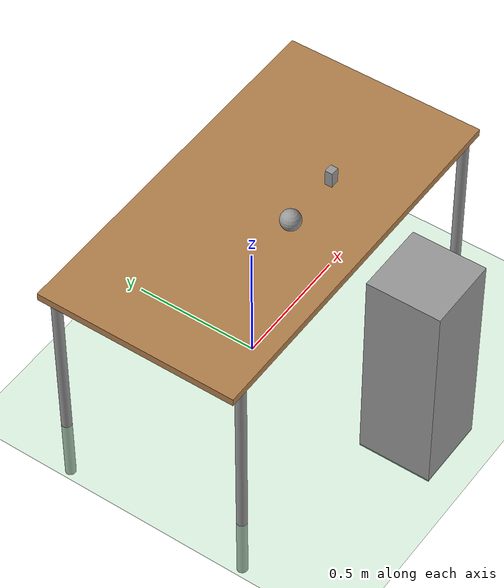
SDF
<sdf version="1.7">
 <world name="default">
  <light name="sun" type="directional">
   <pose>0 0 10 0 -0 0</pose>
   <diffuse>0.8 0.8 0.8 1</diffuse>
   <specular>0.2 0.2 0.2 1</specular>
   <attenuation>
    <range>1000</range>
    <constant>0.9</constant>
    <linear>0.01</linear>
    <quadratic>0.001</quadratic>
   </attenuation>
   <direction>-0.5 0.1 -0.9</direction>
   <spot><inner_angle>0</inner_angle><outer_angle>0</outer_angle><falloff>0</falloff></spot>
  </light>
  <gravity>0 0 -9.8</gravity>
  <magnetic_field>6e-06 2.3e-05 -4.2e-05</magnetic_field>
  <atmosphere type="adiabatic"/>
  <physics type="ode">
   <max_step_size>0.001</max_step_size>
   <real_time_factor>1</real_time_factor>
   <real_time_update_rate>1000</real_time_update_rate>
  </physics>
  <scene><ambient>0.4 0.4 0.4 1</ambient><background>0.7 0.7 0.7 1</background><shadows>1</shadows></scene>
  <spherical_coordinates>
   <surface_model>EARTH_WGS84</surface_model>
   <latitude_deg>0</latitude_deg>
   <longitude_deg>0</longitude_deg>
   <elevation>0</elevation>
   <heading_deg>0</heading_deg>
  </spherical_coordinates>
  <model name="green_ground">
   <static>1</static>
   <link name="link">
    <collision name="collision">
     <geometry><plane><normal>0 0 1</normal><size>100 100</size></plane></geometry>
     <surface><friction><ode><mu>100</mu><mu2>50</mu2></ode></friction></surface>
    </collision>
    <visual name="visual">
     <geometry><plane><normal>0 0 1</normal><size>100 100</size></plane></geometry>
     <material><ambient>0.56 0.86 0.63 1</ambient><diffuse>0.56 0.86 0.63 1</diffuse></material>
    </visual>
   </link>
   <pose>0.338841 -0.356185 0 0 -0 0</pose>
  </model>
  <model name="table">
   <static>1</static>
   <link name="link">
    <collision name="surface">
     <pose>0 0 1 0 -0 0</pose>
     <geometry><box><size>1.5 0.8 0.03</size></box></geometry>
     <surface><friction><ode><mu>0.6</mu><mu2>0.6</mu2></ode></friction></surface>
    </collision>
    <visual name="visual1">
     <pose>0 0 1 0 -0 0</pose>
     <geometry><box><size>1.5 0.8 0.03</size></box></geometry>
     <material>
      <script><uri>file://media/materials/scripts/gazebo.material</uri><name>Gazebo/Wood</name></script>
     </material>
    </visual>
    <collision name="front_left_leg">
     <pose>0.68 0.38 0.5 0 -0 0</pose>
     <geometry><cylinder><radius>0.02</radius><length>1</length></cylinder></geometry>
    </collision>
    <visual name="front_left_leg">
     <pose>0.68 0.38 0.5 0 -0 0</pose>
     <geometry><cylinder><radius>0.02</radius><length>1</length></cylinder></geometry>
     <material>
      <script><uri>file://media/materials/scripts/gazebo.material</uri><name>Gazebo/Grey</name></script>
     </material>
    </visual>
    <collision name="front_right_leg">
     <pose>0.68 -0.38 0.5 0 -0 0</pose>
     <geometry><cylinder><radius>0.02</radius><length>1</length></cylinder></geometry>
    </collision>
    <visual name="front_right_leg">
     <pose>0.68 -0.38 0.5 0 -0 0</pose>
     <geometry><cylinder><radius>0.02</radius><length>1</length></cylinder></geometry>
     <material>
      <script><uri>file://media/materials/scripts/gazebo.material</uri><name>Gazebo/Grey</name></script>
     </material>
    </visual>
    <collision name="back_right_leg">
     <pose>-0.68 -0.38 0.5 0 -0 0</pose>
     <geometry><cylinder><radius>0.02</radius><length>1</length></cylinder></geometry>
    </collision>
    <visual name="back_right_leg">
     <pose>-0.68 -0.38 0.5 0 -0 0</pose>
     <geometry><cylinder><radius>0.02</radius><length>1</length></cylinder></geometry>
     <material>
      <script><uri>file://media/materials/scripts/gazebo.material</uri><name>Gazebo/Grey</name></script>
     </material>
    </visual>
    <collision name="back_left_leg">
     <pose>-0.68 0.38 0.5 0 -0 0</pose>
     <geometry><cylinder><radius>0.02</radius><length>1</length></cylinder></geometry>
    </collision>
    <visual name="back_left_leg">
     <pose>-0.68 0.38 0.5 0 -0 0</pose>
     <geometry><cylinder><radius>0.02</radius><length>1</length></cylinder></geometry>
     <material>
      <script><uri>file://media/materials/scripts/gazebo.material</uri><name>Gazebo/Grey</name></script>
     </material>
    </visual>
   </link>
   <pose>0.020823 -0.037922 -0.27474 0 -0 0</pose>
  </model>
  <model name="unit_sphere">
   <link name="link">
    <inertial>
     <mass>0.05</mass>
     <inertia>
      <ixx>3.101e-05</ixx>
      <ixy>0</ixy>
      <ixz>0</ixz>
      <iyy>3.101e-05</iyy>
      <iyz>0</iyz>
      <izz>3.101e-05</izz>
     </inertia>
    </inertial>
    <visual name="visual">
     <geometry><sphere><radius>0.0393774</radius></sphere></geometry>
     <material>
      <script><name>Gazebo/Grey</name><uri>file://media/materials/scripts/gazebo.material</uri></script>
      <shader type="pixel"><normal_map>__default__</normal_map></shader>
     </material>
    </visual>
    <collision name="collision">
     <geometry><sphere><radius>0.039377</radius></sphere></geometry>
     <surface>
      <friction>
       <ode><mu>1</mu><mu2>1</mu2><fdir1>0 0 0</fdir1><slip1>0</slip1><slip2>0</slip2></ode>
       <torsional>
        <coefficient>1</coefficient>
        <patch_radius>0</patch_radius>
        <surface_radius>0</surface_radius>
        <use_patch_radius>1</use_patch_radius>
        <ode><slip>0</slip></ode>
       </torsional>
      </friction>
      <bounce><restitution_coefficient>0</restitution_coefficient><threshold>1e+06</threshold></bounce>
      <contact>
       <collide_without_contact>0</collide_without_contact>
       <collide_without_contact_bitmask>1</collide_without_contact_bitmask>
       <collide_bitmask>1</collide_bitmask>
       <ode>
        <soft_cfm>0</soft_cfm>
        <soft_erp>0.2</soft_erp>
        <kp>1e+13</kp>
        <kd>1</kd>
        <max_vel>0.01</max_vel>
        <min_depth>0</min_depth>
       </ode>
       <bullet>
        <split_impulse>1</split_impulse>
        <split_impulse_penetration_threshold>-0.01</split_impulse_penetration_threshold>
        <soft_cfm>0</soft_cfm>
        <soft_erp>0.2</soft_erp>
        <kp>1e+13</kp>
        <kd>1</kd>
       </bullet>
      </contact>
     </surface>
    </collision>
   </link>
   <static>0</static>
   <pose>0.001389 -0.160082 0.779637 0 -0 0</pose>
  </model>
  <model name="unit_box">
   <pose>0.257397 -0.154052 0.772286 -1.4e-05 1.4e-05 0.00069</pose>
   <link name="link">
    <inertial>
     <mass>1</mass>
     <inertia>
      <ixx>0.166667</ixx>
      <ixy>0</ixy>
      <ixz>0</ixz>
      <iyy>0.166667</iyy>
      <iyz>0</iyz>
      <izz>0.166667</izz>
     </inertia>
    </inertial>
    <collision name="collision">
     <geometry><box><size>0.035878 0.030242 0.0640513</size></box></geometry>
    </collision>
    <visual name="visual">
     <geometry><box><size>0.035878 0.030242 0.0640513</size></box></geometry>
     <material>
      <script><name>Gazebo/Grey</name><uri>file://media/materials/scripts/gazebo.material</uri></script>
     </material>
    </visual>
   </link>
  </model>
  <model name="ur_base_support">
   <static>1</static>
   <link name="link">
    <inertial>
     <mass>0.0680856</mass>
     <inertia>
      <ixx>0.00441729</ixx>
      <ixy>0</ixy>
      <ixz>0</ixz>
      <iyy>0.00440253</iyy>
      <iyz>0</iyz>
      <izz>0.000927032</izz>
     </inertia>
    </inertial>
    <pose>-0.517298 0.956877 0.1479 0 0.004038 0</pose>
    <visual name="visual">
     <geometry><box><size>0.283537 0.288088 0.85</size></box></geometry>
     <material>
      <script><name>Gazebo/Grey</name><uri>file://media/materials/scripts/gazebo.material</uri></script>
      <shader type="pixel"><normal_map>__default__</normal_map></shader>
      <ambient>0.3 0.3 0.3 1</ambient>
      <diffuse>0.7 0.7 0.7 1</diffuse>
      <specular>0.01 0.01 0.01 1</specular>
      <emissive>0 0 0 1</emissive>
     </material>
    </visual>
    <collision name="collision">
     <geometry><box><size>0.283537 0.288088 0.85</size></box></geometry>
     <surface>
      <friction>
       <ode><mu>1</mu><mu2>1</mu2><fdir1>0 0 0</fdir1><slip1>0</slip1><slip2>0</slip2></ode>
       <torsional>
        <coefficient>1</coefficient>
        <patch_radius>0</patch_radius>
        <surface_radius>0</surface_radius>
        <use_patch_radius>1</use_patch_radius>
        <ode><slip>0</slip></ode>
       </torsional>
      </friction>
      <bounce><restitution_coefficient>0</restitution_coefficient><threshold>1e+06</threshold></bounce>
      <contact>
       <collide_without_contact>0</collide_without_contact>
       <collide_without_contact_bitmask>1</collide_without_contact_bitmask>
       <collide_bitmask>1</collide_bitmask>
       <ode>
        <soft_cfm>0</soft_cfm>
        <soft_erp>0.2</soft_erp>
        <kp>1e+13</kp>
        <kd>1</kd>
        <max_vel>0.01</max_vel>
        <min_depth>0</min_depth>
       </ode>
       <bullet>
        <split_impulse>1</split_impulse>
        <split_impulse_penetration_threshold>-0.01</split_impulse_penetration_threshold>
        <soft_cfm>0</soft_cfm>
        <soft_erp>0.2</soft_erp>
        <kp>1e+13</kp>
        <kd>1</kd>
       </bullet>
      </contact>
     </surface>
    </collision>
   </link>
   <static>0</static>
   <pose>0.517798 -1.66062 0.271186 3e-06 -0.004043 -0.000177</pose>
  </model>
 </world>
</sdf>
